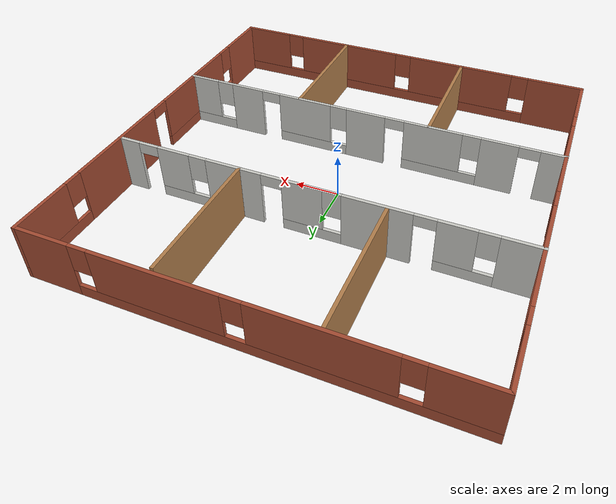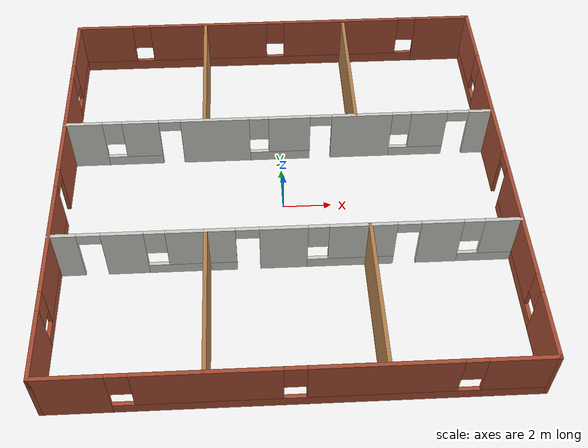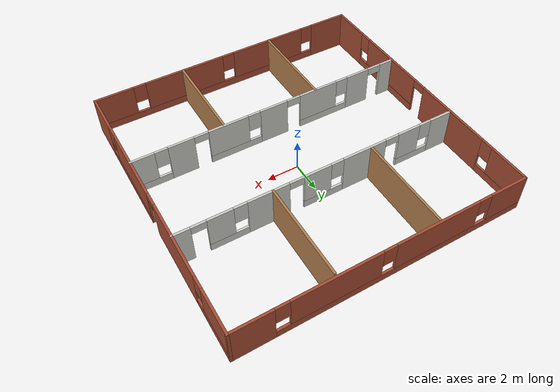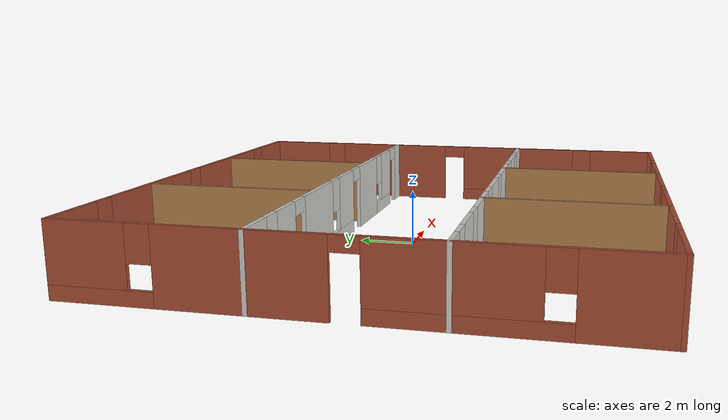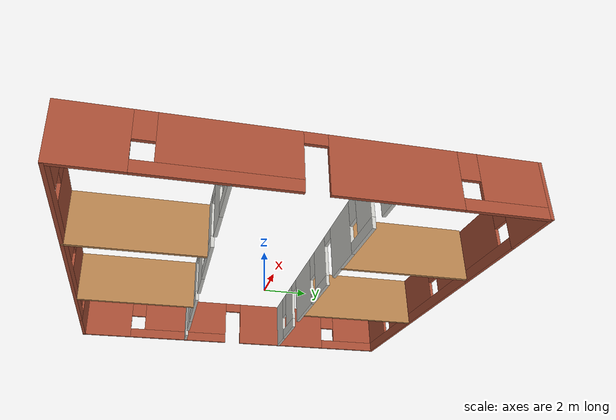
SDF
<?xml version='1.0'?>
<sdf version='1.7'>
  <model name='jail'>
    <pose>-0.00452 -0.00982 0 0 -0 0</pose>
    <link name='Wall_11'>
      <collision name='Wall_11_Collision'>
        <geometry>
          <box>
            <size>6 0.15 2.5</size>
          </box>
        </geometry>
        <pose>0 0 1.25 0 -0 0</pose>
      </collision>
      <visual name='Wall_11_Visual'>
        <pose>0 0 1.25 0 -0 0</pose>
        <geometry>
          <box>
            <size>6 0.15 2.5</size>
          </box>
        </geometry>
        <material>
          <script>
            <uri>file://media/materials/scripts/gazebo.material</uri>
            <name>Gazebo/Wood</name>
          </script>
          <ambient>1 1 1 1</ambient>
        </material>
        <meta>
          <layer>0</layer>
        </meta>
      </visual>
      <pose>-3.06356 -5.96312 0 0 -0 1.5708</pose>
    </link>
    <link name='Wall_13'>
      <pose>-0.004617 -3.00901 0 0 -0 0</pose>
      <visual name='Wall_13_Visual_0'>
        <pose>-8.44763 0 1.25 0 -0 0</pose>
        <geometry>
          <box>
            <size>1.10474 0.15 2.5</size>
          </box>
        </geometry>
        <material>
          <script>
            <uri>file://media/materials/scripts/gazebo.material</uri>
            <name>Gazebo/CeilingTiled</name>
          </script>
          <ambient>1 0.764706 0.305882 1</ambient>
        </material>
        <meta>
          <layer>0</layer>
        </meta>
      </visual>
      <collision name='Wall_13_Collision_0'>
        <geometry>
          <box>
            <size>1.10474 0.15 2.5</size>
          </box>
        </geometry>
        <pose>-8.44763 0 1.25 0 -0 0</pose>
      </collision>
      <visual name='Wall_13_Visual_1'>
        <pose>-6.18737 0 1.25 0 -0 0</pose>
        <geometry>
          <box>
            <size>1.61577 0.15 2.5</size>
          </box>
        </geometry>
        <material>
          <script>
            <uri>file://media/materials/scripts/gazebo.material</uri>
            <name>Gazebo/CeilingTiled</name>
          </script>
          <ambient>1 0.764706 0.305882 1</ambient>
        </material>
        <meta>
          <layer>0</layer>
        </meta>
      </visual>
      <collision name='Wall_13_Collision_1'>
        <geometry>
          <box>
            <size>1.61577 0.15 2.5</size>
          </box>
        </geometry>
        <pose>-6.18737 0 1.25 0 -0 0</pose>
      </collision>
      <visual name='Wall_13_Visual_2'>
        <pose>-0.116003 0 1.25 0 -0 0</pose>
        <geometry>
          <box>
            <size>1.84839 0.15 2.5</size>
          </box>
        </geometry>
        <material>
          <script>
            <uri>file://media/materials/scripts/gazebo.material</uri>
            <name>Gazebo/CeilingTiled</name>
          </script>
          <ambient>1 0.764706 0.305882 1</ambient>
        </material>
        <meta>
          <layer>0</layer>
        </meta>
      </visual>
      <collision name='Wall_13_Collision_2'>
        <geometry>
          <box>
            <size>1.84839 0.15 2.5</size>
          </box>
        </geometry>
        <pose>-0.116003 0 1.25 0 -0 0</pose>
      </collision>
      <visual name='Wall_13_Visual_3'>
        <pose>5.90884 0 1.25 0 -0 0</pose>
        <geometry>
          <box>
            <size>1.61577 0.15 2.5</size>
          </box>
        </geometry>
        <material>
          <script>
            <uri>file://media/materials/scripts/gazebo.material</uri>
            <name>Gazebo/CeilingTiled</name>
          </script>
          <ambient>1 0.764706 0.305882 1</ambient>
        </material>
        <meta>
          <layer>0</layer>
        </meta>
      </visual>
      <collision name='Wall_13_Collision_3'>
        <geometry>
          <box>
            <size>1.61577 0.15 2.5</size>
          </box>
        </geometry>
        <pose>5.90884 0 1.25 0 -0 0</pose>
      </collision>
      <visual name='Wall_13_Visual_4'>
        <pose>-3.65984 0 0.25 0 -0 0</pose>
        <geometry>
          <box>
            <size>3.43929 0.15 0.5</size>
          </box>
        </geometry>
        <material>
          <script>
            <uri>file://media/materials/scripts/gazebo.material</uri>
            <name>Gazebo/CeilingTiled</name>
          </script>
          <ambient>1 0.764706 0.305882 1</ambient>
        </material>
        <meta>
          <layer>0</layer>
        </meta>
      </visual>
      <collision name='Wall_13_Collision_4'>
        <geometry>
          <box>
            <size>3.43929 0.15 0.5</size>
          </box>
        </geometry>
        <pose>-3.65984 0 0.25 0 -0 0</pose>
      </collision>
      <visual name='Wall_13_Visual_5'>
        <pose>2.50457 0 0.25 0 -0 0</pose>
        <geometry>
          <box>
            <size>3.39277 0.15 0.5</size>
          </box>
        </geometry>
        <material>
          <script>
            <uri>file://media/materials/scripts/gazebo.material</uri>
            <name>Gazebo/CeilingTiled</name>
          </script>
          <ambient>1 0.764706 0.305882 1</ambient>
        </material>
        <meta>
          <layer>0</layer>
        </meta>
      </visual>
      <collision name='Wall_13_Collision_5'>
        <geometry>
          <box>
            <size>3.39277 0.15 0.5</size>
          </box>
        </geometry>
        <pose>2.50457 0 0.25 0 -0 0</pose>
      </collision>
      <visual name='Wall_13_Visual_6'>
        <pose>7.85836 0 0.25 0 -0 0</pose>
        <geometry>
          <box>
            <size>2.28327 0.15 0.5</size>
          </box>
        </geometry>
        <material>
          <script>
            <uri>file://media/materials/scripts/gazebo.material</uri>
            <name>Gazebo/CeilingTiled</name>
          </script>
          <ambient>1 0.764706 0.305882 1</ambient>
        </material>
        <meta>
          <layer>0</layer>
        </meta>
      </visual>
      <collision name='Wall_13_Collision_6'>
        <geometry>
          <box>
            <size>2.28327 0.15 0.5</size>
          </box>
        </geometry>
        <pose>7.85836 0 0.25 0 -0 0</pose>
      </collision>
      <visual name='Wall_13_Visual_7'>
        <pose>-3.25984 0 1.5 0 -0 0</pose>
        <geometry>
          <box>
            <size>2.63929 0.15 2</size>
          </box>
        </geometry>
        <material>
          <script>
            <uri>file://media/materials/scripts/gazebo.material</uri>
            <name>Gazebo/CeilingTiled</name>
          </script>
          <ambient>1 0.764706 0.305882 1</ambient>
        </material>
        <meta>
          <layer>0</layer>
        </meta>
      </visual>
      <collision name='Wall_13_Collision_7'>
        <geometry>
          <box>
            <size>2.63929 0.15 2</size>
          </box>
        </geometry>
        <pose>-3.25984 0 1.5 0 -0 0</pose>
      </collision>
      <visual name='Wall_13_Visual_8'>
        <pose>-3.25984 0 1.5 0 -0 0</pose>
        <geometry>
          <box>
            <size>2.63929 0.15 2</size>
          </box>
        </geometry>
        <material>
          <script>
            <uri>file://media/materials/scripts/gazebo.material</uri>
            <name>Gazebo/CeilingTiled</name>
          </script>
          <ambient>1 0.764706 0.305882 1</ambient>
        </material>
        <meta>
          <layer>0</layer>
        </meta>
      </visual>
      <collision name='Wall_13_Collision_8'>
        <geometry>
          <box>
            <size>2.63929 0.15 2</size>
          </box>
        </geometry>
        <pose>-3.25984 0 1.5 0 -0 0</pose>
      </collision>
      <visual name='Wall_13_Visual_9'>
        <pose>2.90457 0 1.5 0 -0 0</pose>
        <geometry>
          <box>
            <size>2.59277 0.15 2</size>
          </box>
        </geometry>
        <material>
          <script>
            <uri>file://media/materials/scripts/gazebo.material</uri>
            <name>Gazebo/CeilingTiled</name>
          </script>
          <ambient>1 0.764706 0.305882 1</ambient>
        </material>
        <meta>
          <layer>0</layer>
        </meta>
      </visual>
      <collision name='Wall_13_Collision_9'>
        <geometry>
          <box>
            <size>2.59277 0.15 2</size>
          </box>
        </geometry>
        <pose>2.90457 0 1.5 0 -0 0</pose>
      </collision>
      <visual name='Wall_13_Visual_10'>
        <pose>2.90457 0 1.5 0 -0 0</pose>
        <geometry>
          <box>
            <size>2.59277 0.15 2</size>
          </box>
        </geometry>
        <material>
          <script>
            <uri>file://media/materials/scripts/gazebo.material</uri>
            <name>Gazebo/CeilingTiled</name>
          </script>
          <ambient>1 0.764706 0.305882 1</ambient>
        </material>
        <meta>
          <layer>0</layer>
        </meta>
      </visual>
      <collision name='Wall_13_Collision_10'>
        <geometry>
          <box>
            <size>2.59277 0.15 2</size>
          </box>
        </geometry>
        <pose>2.90457 0 1.5 0 -0 0</pose>
      </collision>
      <visual name='Wall_13_Visual_11'>
        <pose>8.25836 0 1.5 0 -0 0</pose>
        <geometry>
          <box>
            <size>1.48327 0.15 2</size>
          </box>
        </geometry>
        <material>
          <script>
            <uri>file://media/materials/scripts/gazebo.material</uri>
            <name>Gazebo/CeilingTiled</name>
          </script>
          <ambient>1 0.764706 0.305882 1</ambient>
        </material>
        <meta>
          <layer>0</layer>
        </meta>
      </visual>
      <collision name='Wall_13_Collision_11'>
        <geometry>
          <box>
            <size>1.48327 0.15 2</size>
          </box>
        </geometry>
        <pose>8.25836 0 1.5 0 -0 0</pose>
      </collision>
      <visual name='Wall_13_Visual_12'>
        <pose>-4.97949 0 1.9 0 -0 0</pose>
        <geometry>
          <box>
            <size>0.8 0.15 1.2</size>
          </box>
        </geometry>
        <material>
          <script>
            <uri>file://media/materials/scripts/gazebo.material</uri>
            <name>Gazebo/CeilingTiled</name>
          </script>
          <ambient>1 0.764706 0.305882 1</ambient>
        </material>
        <meta>
          <layer>0</layer>
        </meta>
      </visual>
      <collision name='Wall_13_Collision_12'>
        <geometry>
          <box>
            <size>0.8 0.15 1.2</size>
          </box>
        </geometry>
        <pose>-4.97949 0 1.9 0 -0 0</pose>
      </collision>
      <visual name='Wall_13_Visual_13'>
        <pose>1.20819 0 1.9 0 -0 0</pose>
        <geometry>
          <box>
            <size>0.8 0.15 1.2</size>
          </box>
        </geometry>
        <material>
          <script>
            <uri>file://media/materials/scripts/gazebo.material</uri>
            <name>Gazebo/CeilingTiled</name>
          </script>
          <ambient>1 0.764706 0.305882 1</ambient>
        </material>
        <meta>
          <layer>0</layer>
        </meta>
      </visual>
      <collision name='Wall_13_Collision_13'>
        <geometry>
          <box>
            <size>0.8 0.15 1.2</size>
          </box>
        </geometry>
        <pose>1.20819 0 1.9 0 -0 0</pose>
      </collision>
      <visual name='Wall_13_Visual_14'>
        <pose>7.11673 0 1.9 0 -0 0</pose>
        <geometry>
          <box>
            <size>0.8 0.15 1.2</size>
          </box>
        </geometry>
        <material>
          <script>
            <uri>file://media/materials/scripts/gazebo.material</uri>
            <name>Gazebo/CeilingTiled</name>
          </script>
          <ambient>1 0.764706 0.305882 1</ambient>
        </material>
        <meta>
          <layer>0</layer>
        </meta>
      </visual>
      <collision name='Wall_13_Collision_14'>
        <geometry>
          <box>
            <size>0.8 0.15 1.2</size>
          </box>
        </geometry>
        <pose>7.11673 0 1.9 0 -0 0</pose>
      </collision>
      <visual name='Wall_13_Visual_15'>
        <pose>-7.44526 0 2.25 0 -0 0</pose>
        <geometry>
          <box>
            <size>0.9 0.15 0.5</size>
          </box>
        </geometry>
        <material>
          <script>
            <uri>file://media/materials/scripts/gazebo.material</uri>
            <name>Gazebo/CeilingTiled</name>
          </script>
          <ambient>1 0.764706 0.305882 1</ambient>
        </material>
        <meta>
          <layer>0</layer>
        </meta>
      </visual>
      <collision name='Wall_13_Collision_15'>
        <geometry>
          <box>
            <size>0.9 0.15 0.5</size>
          </box>
        </geometry>
        <pose>-7.44526 0 2.25 0 -0 0</pose>
      </collision>
      <visual name='Wall_13_Visual_16'>
        <pose>-1.4902 0 2.25 0 -0 0</pose>
        <geometry>
          <box>
            <size>0.9 0.15 0.5</size>
          </box>
        </geometry>
        <material>
          <script>
            <uri>file://media/materials/scripts/gazebo.material</uri>
            <name>Gazebo/CeilingTiled</name>
          </script>
          <ambient>1 0.764706 0.305882 1</ambient>
        </material>
        <meta>
          <layer>0</layer>
        </meta>
      </visual>
      <collision name='Wall_13_Collision_16'>
        <geometry>
          <box>
            <size>0.9 0.15 0.5</size>
          </box>
        </geometry>
        <pose>-1.4902 0 2.25 0 -0 0</pose>
      </collision>
      <visual name='Wall_13_Visual_17'>
        <pose>-1.4902 0 2.25 0 -0 0</pose>
        <geometry>
          <box>
            <size>0.9 0.15 0.5</size>
          </box>
        </geometry>
        <material>
          <script>
            <uri>file://media/materials/scripts/gazebo.material</uri>
            <name>Gazebo/CeilingTiled</name>
          </script>
          <ambient>1 0.764706 0.305882 1</ambient>
        </material>
        <meta>
          <layer>0</layer>
        </meta>
      </visual>
      <collision name='Wall_13_Collision_17'>
        <geometry>
          <box>
            <size>0.9 0.15 0.5</size>
          </box>
        </geometry>
        <pose>-1.4902 0 2.25 0 -0 0</pose>
      </collision>
      <visual name='Wall_13_Visual_18'>
        <pose>4.65096 0 2.25 0 -0 0</pose>
        <geometry>
          <box>
            <size>0.9 0.15 0.5</size>
          </box>
        </geometry>
        <material>
          <script>
            <uri>file://media/materials/scripts/gazebo.material</uri>
            <name>Gazebo/CeilingTiled</name>
          </script>
          <ambient>1 0.764706 0.305882 1</ambient>
        </material>
        <meta>
          <layer>0</layer>
        </meta>
      </visual>
      <collision name='Wall_13_Collision_18'>
        <geometry>
          <box>
            <size>0.9 0.15 0.5</size>
          </box>
        </geometry>
        <pose>4.65096 0 2.25 0 -0 0</pose>
      </collision>
      <visual name='Wall_13_Visual_19'>
        <pose>4.65096 0 2.25 0 -0 0</pose>
        <geometry>
          <box>
            <size>0.9 0.15 0.5</size>
          </box>
        </geometry>
        <material>
          <script>
            <uri>file://media/materials/scripts/gazebo.material</uri>
            <name>Gazebo/CeilingTiled</name>
          </script>
          <ambient>1 0.764706 0.305882 1</ambient>
        </material>
        <meta>
          <layer>0</layer>
        </meta>
      </visual>
      <collision name='Wall_13_Collision_19'>
        <geometry>
          <box>
            <size>0.9 0.15 0.5</size>
          </box>
        </geometry>
        <pose>4.65096 0 2.25 0 -0 0</pose>
      </collision>
    </link>
    <link name='Wall_15'>
      <collision name='Wall_15_Collision'>
        <geometry>
          <box>
            <size>6 0.15 2.5</size>
          </box>
        </geometry>
        <pose>0 0 1.25 0 -0 0</pose>
      </collision>
      <visual name='Wall_15_Visual'>
        <pose>0 0 1.25 0 -0 0</pose>
        <geometry>
          <box>
            <size>6 0.15 2.5</size>
          </box>
        </geometry>
        <material>
          <script>
            <uri>file://media/materials/scripts/gazebo.material</uri>
            <name>Gazebo/Wood</name>
          </script>
          <ambient>1 1 1 1</ambient>
        </material>
        <meta>
          <layer>0</layer>
        </meta>
      </visual>
      <pose>-3.15142 5.84831 0 0 -0 -1.5708</pose>
    </link>
    <link name='Wall_21'>
      <pose>-0.004676 2.78133 0 0 -0 0</pose>
      <visual name='Wall_21_Visual_0'>
        <pose>-8.18998 0 1.25 0 -0 0</pose>
        <geometry>
          <box>
            <size>1.62004 0.15 2.5</size>
          </box>
        </geometry>
        <material>
          <script>
            <uri>file://media/materials/scripts/gazebo.material</uri>
            <name>Gazebo/CeilingTiled</name>
          </script>
          <ambient>1 0.764706 0.305882 1</ambient>
        </material>
        <meta>
          <layer>0</layer>
        </meta>
      </visual>
      <collision name='Wall_21_Collision_0'>
        <geometry>
          <box>
            <size>1.62004 0.15 2.5</size>
          </box>
        </geometry>
        <pose>-8.18998 0 1.25 0 -0 0</pose>
      </collision>
      <visual name='Wall_21_Visual_1'>
        <pose>-2.72128 0 1.25 0 -0 0</pose>
        <geometry>
          <box>
            <size>2.87191 0.15 2.5</size>
          </box>
        </geometry>
        <material>
          <script>
            <uri>file://media/materials/scripts/gazebo.material</uri>
            <name>Gazebo/CeilingTiled</name>
          </script>
          <ambient>1 0.764706 0.305882 1</ambient>
        </material>
        <meta>
          <layer>0</layer>
        </meta>
      </visual>
      <collision name='Wall_21_Collision_1'>
        <geometry>
          <box>
            <size>2.87191 0.15 2.5</size>
          </box>
        </geometry>
        <pose>-2.72128 0 1.25 0 -0 0</pose>
      </collision>
      <visual name='Wall_21_Visual_2'>
        <pose>3.44314 0 1.25 0 -0 0</pose>
        <geometry>
          <box>
            <size>2.54625 0.15 2.5</size>
          </box>
        </geometry>
        <material>
          <script>
            <uri>file://media/materials/scripts/gazebo.material</uri>
            <name>Gazebo/CeilingTiled</name>
          </script>
          <ambient>1 0.764706 0.305882 1</ambient>
        </material>
        <meta>
          <layer>0</layer>
        </meta>
      </visual>
      <collision name='Wall_21_Collision_2'>
        <geometry>
          <box>
            <size>2.54625 0.15 2.5</size>
          </box>
        </geometry>
        <pose>3.44314 0 1.25 0 -0 0</pose>
      </collision>
      <visual name='Wall_21_Visual_3'>
        <pose>8.46949 0 1.25 0 -0 0</pose>
        <geometry>
          <box>
            <size>1.06102 0.15 2.5</size>
          </box>
        </geometry>
        <material>
          <script>
            <uri>file://media/materials/scripts/gazebo.material</uri>
            <name>Gazebo/CeilingTiled</name>
          </script>
          <ambient>1 0.764706 0.305882 1</ambient>
        </material>
        <meta>
          <layer>0</layer>
        </meta>
      </visual>
      <collision name='Wall_21_Collision_3'>
        <geometry>
          <box>
            <size>1.06102 0.15 2.5</size>
          </box>
        </geometry>
        <pose>8.46949 0 1.25 0 -0 0</pose>
      </collision>
      <visual name='Wall_21_Visual_4'>
        <pose>-6.2186 0 0.25 0 -0 0</pose>
        <geometry>
          <box>
            <size>2.32272 0.15 0.5</size>
          </box>
        </geometry>
        <material>
          <script>
            <uri>file://media/materials/scripts/gazebo.material</uri>
            <name>Gazebo/CeilingTiled</name>
          </script>
          <ambient>1 0.764706 0.305882 1</ambient>
        </material>
        <meta>
          <layer>0</layer>
        </meta>
      </visual>
      <collision name='Wall_21_Collision_4'>
        <geometry>
          <box>
            <size>2.32272 0.15 0.5</size>
          </box>
        </geometry>
        <pose>-6.2186 0 0.25 0 -0 0</pose>
      </collision>
      <visual name='Wall_21_Visual_5'>
        <pose>-0.007657 0 0.25 0 -0 0</pose>
        <geometry>
          <box>
            <size>2.55534 0.15 0.5</size>
          </box>
        </geometry>
        <material>
          <script>
            <uri>file://media/materials/scripts/gazebo.material</uri>
            <name>Gazebo/CeilingTiled</name>
          </script>
          <ambient>1 0.764706 0.305882 1</ambient>
        </material>
        <meta>
          <layer>0</layer>
        </meta>
      </visual>
      <collision name='Wall_21_Collision_5'>
        <geometry>
          <box>
            <size>2.55534 0.15 0.5</size>
          </box>
        </geometry>
        <pose>-0.007657 0 0.25 0 -0 0</pose>
      </collision>
      <visual name='Wall_21_Visual_6'>
        <pose>5.87762 0 0.25 0 -0 0</pose>
        <geometry>
          <box>
            <size>2.32272 0.15 0.5</size>
          </box>
        </geometry>
        <material>
          <script>
            <uri>file://media/materials/scripts/gazebo.material</uri>
            <name>Gazebo/CeilingTiled</name>
          </script>
          <ambient>1 0.764706 0.305882 1</ambient>
        </material>
        <meta>
          <layer>0</layer>
        </meta>
      </visual>
      <collision name='Wall_21_Collision_6'>
        <geometry>
          <box>
            <size>2.32272 0.15 0.5</size>
          </box>
        </geometry>
        <pose>5.87762 0 0.25 0 -0 0</pose>
      </collision>
      <visual name='Wall_21_Visual_7'>
        <pose>-5.8186 0 1.5 0 -0 0</pose>
        <geometry>
          <box>
            <size>1.52272 0.15 2</size>
          </box>
        </geometry>
        <material>
          <script>
            <uri>file://media/materials/scripts/gazebo.material</uri>
            <name>Gazebo/CeilingTiled</name>
          </script>
          <ambient>1 0.764706 0.305882 1</ambient>
        </material>
        <meta>
          <layer>0</layer>
        </meta>
      </visual>
      <collision name='Wall_21_Collision_7'>
        <geometry>
          <box>
            <size>1.52272 0.15 2</size>
          </box>
        </geometry>
        <pose>-5.8186 0 1.5 0 -0 0</pose>
      </collision>
      <visual name='Wall_21_Visual_8'>
        <pose>-5.8186 0 1.5 0 -0 0</pose>
        <geometry>
          <box>
            <size>1.52272 0.15 2</size>
          </box>
        </geometry>
        <material>
          <script>
            <uri>file://media/materials/scripts/gazebo.material</uri>
            <name>Gazebo/CeilingTiled</name>
          </script>
          <ambient>1 0.764706 0.305882 1</ambient>
        </material>
        <meta>
          <layer>0</layer>
        </meta>
      </visual>
      <collision name='Wall_21_Collision_8'>
        <geometry>
          <box>
            <size>1.52272 0.15 2</size>
          </box>
        </geometry>
        <pose>-5.8186 0 1.5 0 -0 0</pose>
      </collision>
      <visual name='Wall_21_Visual_9'>
        <pose>0.392343 0 1.5 0 -0 0</pose>
        <geometry>
          <box>
            <size>1.75534 0.15 2</size>
          </box>
        </geometry>
        <material>
          <script>
            <uri>file://media/materials/scripts/gazebo.material</uri>
            <name>Gazebo/CeilingTiled</name>
          </script>
          <ambient>1 0.764706 0.305882 1</ambient>
        </material>
        <meta>
          <layer>0</layer>
        </meta>
      </visual>
      <collision name='Wall_21_Collision_9'>
        <geometry>
          <box>
            <size>1.75534 0.15 2</size>
          </box>
        </geometry>
        <pose>0.392343 0 1.5 0 -0 0</pose>
      </collision>
      <visual name='Wall_21_Visual_10'>
        <pose>0.392343 0 1.5 0 -0 0</pose>
        <geometry>
          <box>
            <size>1.75534 0.15 2</size>
          </box>
        </geometry>
        <material>
          <script>
            <uri>file://media/materials/scripts/gazebo.material</uri>
            <name>Gazebo/CeilingTiled</name>
          </script>
          <ambient>1 0.764706 0.305882 1</ambient>
        </material>
        <meta>
          <layer>0</layer>
        </meta>
      </visual>
      <collision name='Wall_21_Collision_10'>
        <geometry>
          <box>
            <size>1.75534 0.15 2</size>
          </box>
        </geometry>
        <pose>0.392343 0 1.5 0 -0 0</pose>
      </collision>
      <visual name='Wall_21_Visual_11'>
        <pose>6.27762 0 1.5 0 -0 0</pose>
        <geometry>
          <box>
            <size>1.52272 0.15 2</size>
          </box>
        </geometry>
        <material>
          <script>
            <uri>file://media/materials/scripts/gazebo.material</uri>
            <name>Gazebo/CeilingTiled</name>
          </script>
          <ambient>1 0.764706 0.305882 1</ambient>
        </material>
        <meta>
          <layer>0</layer>
        </meta>
      </visual>
      <collision name='Wall_21_Collision_11'>
        <geometry>
          <box>
            <size>1.52272 0.15 2</size>
          </box>
        </geometry>
        <pose>6.27762 0 1.5 0 -0 0</pose>
      </collision>
      <visual name='Wall_21_Visual_12'>
        <pose>-6.97996 0 1.9 0 -0 0</pose>
        <geometry>
          <box>
            <size>0.8 0.15 1.2</size>
          </box>
        </geometry>
        <material>
          <script>
            <uri>file://media/materials/scripts/gazebo.material</uri>
            <name>Gazebo/CeilingTiled</name>
          </script>
          <ambient>1 0.764706 0.305882 1</ambient>
        </material>
        <meta>
          <layer>0</layer>
        </meta>
      </visual>
      <collision name='Wall_21_Collision_12'>
        <geometry>
          <box>
            <size>0.8 0.15 1.2</size>
          </box>
        </geometry>
        <pose>-6.97996 0 1.9 0 -0 0</pose>
      </collision>
      <visual name='Wall_21_Visual_13'>
        <pose>-0.885326 0 1.9 0 -0 0</pose>
        <geometry>
          <box>
            <size>0.8 0.15 1.2</size>
          </box>
        </geometry>
        <material>
          <script>
            <uri>file://media/materials/scripts/gazebo.material</uri>
            <name>Gazebo/CeilingTiled</name>
          </script>
          <ambient>1 0.764706 0.305882 1</ambient>
        </material>
        <meta>
          <layer>0</layer>
        </meta>
      </visual>
      <collision name='Wall_21_Collision_13'>
        <geometry>
          <box>
            <size>0.8 0.15 1.2</size>
          </box>
        </geometry>
        <pose>-0.885326 0 1.9 0 -0 0</pose>
      </collision>
      <visual name='Wall_21_Visual_14'>
        <pose>5.11626 0 1.9 0 -0 0</pose>
        <geometry>
          <box>
            <size>0.8 0.15 1.2</size>
          </box>
        </geometry>
        <material>
          <script>
            <uri>file://media/materials/scripts/gazebo.material</uri>
            <name>Gazebo/CeilingTiled</name>
          </script>
          <ambient>1 0.764706 0.305882 1</ambient>
        </material>
        <meta>
          <layer>0</layer>
        </meta>
      </visual>
      <collision name='Wall_21_Collision_14'>
        <geometry>
          <box>
            <size>0.8 0.15 1.2</size>
          </box>
        </geometry>
        <pose>5.11626 0 1.9 0 -0 0</pose>
      </collision>
      <visual name='Wall_21_Visual_15'>
        <pose>-4.60724 0 2.25 0 -0 0</pose>
        <geometry>
          <box>
            <size>0.9 0.15 0.5</size>
          </box>
        </geometry>
        <material>
          <script>
            <uri>file://media/materials/scripts/gazebo.material</uri>
            <name>Gazebo/CeilingTiled</name>
          </script>
          <ambient>1 0.764706 0.305882 1</ambient>
        </material>
        <meta>
          <layer>0</layer>
        </meta>
      </visual>
      <collision name='Wall_21_Collision_15'>
        <geometry>
          <box>
            <size>0.9 0.15 0.5</size>
          </box>
        </geometry>
        <pose>-4.60724 0 2.25 0 -0 0</pose>
      </collision>
      <visual name='Wall_21_Visual_16'>
        <pose>-4.60724 0 2.25 0 -0 0</pose>
        <geometry>
          <box>
            <size>0.9 0.15 0.5</size>
          </box>
        </geometry>
        <material>
          <script>
            <uri>file://media/materials/scripts/gazebo.material</uri>
            <name>Gazebo/CeilingTiled</name>
          </script>
          <ambient>1 0.764706 0.305882 1</ambient>
        </material>
        <meta>
          <layer>0</layer>
        </meta>
      </visual>
      <collision name='Wall_21_Collision_16'>
        <geometry>
          <box>
            <size>0.9 0.15 0.5</size>
          </box>
        </geometry>
        <pose>-4.60724 0 2.25 0 -0 0</pose>
      </collision>
      <visual name='Wall_21_Visual_17'>
        <pose>1.72001 0 2.25 0 -0 0</pose>
        <geometry>
          <box>
            <size>0.9 0.15 0.5</size>
          </box>
        </geometry>
        <material>
          <script>
            <uri>file://media/materials/scripts/gazebo.material</uri>
            <name>Gazebo/CeilingTiled</name>
          </script>
          <ambient>1 0.764706 0.305882 1</ambient>
        </material>
        <meta>
          <layer>0</layer>
        </meta>
      </visual>
      <collision name='Wall_21_Collision_17'>
        <geometry>
          <box>
            <size>0.9 0.15 0.5</size>
          </box>
        </geometry>
        <pose>1.72001 0 2.25 0 -0 0</pose>
      </collision>
      <visual name='Wall_21_Visual_18'>
        <pose>1.72001 0 2.25 0 -0 0</pose>
        <geometry>
          <box>
            <size>0.9 0.15 0.5</size>
          </box>
        </geometry>
        <material>
          <script>
            <uri>file://media/materials/scripts/gazebo.material</uri>
            <name>Gazebo/CeilingTiled</name>
          </script>
          <ambient>1 0.764706 0.305882 1</ambient>
        </material>
        <meta>
          <layer>0</layer>
        </meta>
      </visual>
      <collision name='Wall_21_Collision_18'>
        <geometry>
          <box>
            <size>0.9 0.15 0.5</size>
          </box>
        </geometry>
        <pose>1.72001 0 2.25 0 -0 0</pose>
      </collision>
      <visual name='Wall_21_Visual_19'>
        <pose>7.48898 0 2.25 0 -0 0</pose>
        <geometry>
          <box>
            <size>0.9 0.15 0.5</size>
          </box>
        </geometry>
        <material>
          <script>
            <uri>file://media/materials/scripts/gazebo.material</uri>
            <name>Gazebo/CeilingTiled</name>
          </script>
          <ambient>1 0.764706 0.305882 1</ambient>
        </material>
        <meta>
          <layer>0</layer>
        </meta>
      </visual>
      <collision name='Wall_21_Collision_19'>
        <geometry>
          <box>
            <size>0.9 0.15 0.5</size>
          </box>
        </geometry>
        <pose>7.48898 0 2.25 0 -0 0</pose>
      </collision>
    </link>
    <link name='Wall_25'>
      <collision name='Wall_25_Collision'>
        <geometry>
          <box>
            <size>6 0.15 2.5</size>
          </box>
        </geometry>
        <pose>0 0 1.25 0 -0 0</pose>
      </collision>
      <visual name='Wall_25_Visual'>
        <pose>0 0 1.25 0 -0 0</pose>
        <geometry>
          <box>
            <size>6 0.15 2.5</size>
          </box>
        </geometry>
        <material>
          <script>
            <uri>file://media/materials/scripts/gazebo.material</uri>
            <name>Gazebo/Wood</name>
          </script>
          <ambient>1 1 1 1</ambient>
        </material>
        <meta>
          <layer>0</layer>
        </meta>
      </visual>
      <pose>3.16189 -5.95721 0 0 -0 1.5708</pose>
    </link>
    <link name='Wall_27'>
      <collision name='Wall_27_Collision'>
        <geometry>
          <box>
            <size>6 0.15 2.5</size>
          </box>
        </geometry>
        <pose>0 0 1.25 0 -0 0</pose>
      </collision>
      <visual name='Wall_27_Visual'>
        <pose>0 0 1.25 0 -0 0</pose>
        <geometry>
          <box>
            <size>6 0.15 2.5</size>
          </box>
        </geometry>
        <material>
          <script>
            <uri>file://media/materials/scripts/gazebo.material</uri>
            <name>Gazebo/Wood</name>
          </script>
          <ambient>1 1 1 1</ambient>
        </material>
        <meta>
          <layer>0</layer>
        </meta>
      </visual>
      <pose>3.16202 5.75982 0 0 -0 1.5708</pose>
    </link>
    <link name='Wall_3'>
      <pose>0.004675 -8.925 0 0 -0 0</pose>
      <visual name='Wall_3_Visual_0'>
        <pose>-7.69511 0 1.25 0 -0 0</pose>
        <geometry>
          <box>
            <size>2.60977 0.15 2.5</size>
          </box>
        </geometry>
        <material>
          <script>
            <uri>file://media/materials/scripts/gazebo.material</uri>
            <name>Gazebo/Bricks</name>
          </script>
          <ambient>1 1 1 1</ambient>
        </material>
        <meta>
          <layer>0</layer>
        </meta>
      </visual>
      <collision name='Wall_3_Collision_0'>
        <geometry>
          <box>
            <size>2.60977 0.15 2.5</size>
          </box>
        </geometry>
        <pose>-7.69511 0 1.25 0 -0 0</pose>
      </collision>
      <visual name='Wall_3_Visual_1'>
        <pose>1.30489 0 0.25 0 -0 0</pose>
        <geometry>
          <box>
            <size>15.3902 0.15 0.5</size>
          </box>
        </geometry>
        <material>
          <script>
            <uri>file://media/materials/scripts/gazebo.material</uri>
            <name>Gazebo/Bricks</name>
          </script>
          <ambient>1 1 1 1</ambient>
        </material>
        <meta>
          <layer>0</layer>
        </meta>
      </visual>
      <collision name='Wall_3_Collision_1'>
        <geometry>
          <box>
            <size>15.3902 0.15 0.5</size>
          </box>
        </geometry>
        <pose>1.30489 0 0.25 0 -0 0</pose>
      </collision>
      <visual name='Wall_3_Visual_2'>
        <pose>-2.99651 0 1.5 0 -0 0</pose>
        <geometry>
          <box>
            <size>5.18743 0.15 2</size>
          </box>
        </geometry>
        <material>
          <script>
            <uri>file://media/materials/scripts/gazebo.material</uri>
            <name>Gazebo/Bricks</name>
          </script>
          <ambient>1 1 1 1</ambient>
        </material>
        <meta>
          <layer>0</layer>
        </meta>
      </visual>
      <collision name='Wall_3_Collision_2'>
        <geometry>
          <box>
            <size>5.18743 0.15 2</size>
          </box>
        </geometry>
        <pose>-2.99651 0 1.5 0 -0 0</pose>
      </collision>
      <visual name='Wall_3_Visual_3'>
        <pose>3.05159 0 1.5 0 -0 0</pose>
        <geometry>
          <box>
            <size>5.30879 0.15 2</size>
          </box>
        </geometry>
        <material>
          <script>
            <uri>file://media/materials/scripts/gazebo.material</uri>
            <name>Gazebo/Bricks</name>
          </script>
          <ambient>1 1 1 1</ambient>
        </material>
        <meta>
          <layer>0</layer>
        </meta>
      </visual>
      <collision name='Wall_3_Collision_3'>
        <geometry>
          <box>
            <size>5.30879 0.15 2</size>
          </box>
        </geometry>
        <pose>3.05159 0 1.5 0 -0 0</pose>
      </collision>
      <visual name='Wall_3_Visual_4'>
        <pose>7.753 0 1.5 0 -0 0</pose>
        <geometry>
          <box>
            <size>2.49401 0.15 2</size>
          </box>
        </geometry>
        <material>
          <script>
            <uri>file://media/materials/scripts/gazebo.material</uri>
            <name>Gazebo/Bricks</name>
          </script>
          <ambient>1 1 1 1</ambient>
        </material>
        <meta>
          <layer>0</layer>
        </meta>
      </visual>
      <collision name='Wall_3_Collision_4'>
        <geometry>
          <box>
            <size>2.49401 0.15 2</size>
          </box>
        </geometry>
        <pose>7.753 0 1.5 0 -0 0</pose>
      </collision>
      <visual name='Wall_3_Visual_5'>
        <pose>-5.99023 0 1.9 0 -0 0</pose>
        <geometry>
          <box>
            <size>0.8 0.15 1.2</size>
          </box>
        </geometry>
        <material>
          <script>
            <uri>file://media/materials/scripts/gazebo.material</uri>
            <name>Gazebo/Bricks</name>
          </script>
          <ambient>1 1 1 1</ambient>
        </material>
        <meta>
          <layer>0</layer>
        </meta>
      </visual>
      <collision name='Wall_3_Collision_5'>
        <geometry>
          <box>
            <size>0.8 0.15 1.2</size>
          </box>
        </geometry>
        <pose>-5.99023 0 1.9 0 -0 0</pose>
      </collision>
      <visual name='Wall_3_Visual_6'>
        <pose>-0.002802 0 1.9 0 -0 0</pose>
        <geometry>
          <box>
            <size>0.8 0.15 1.2</size>
          </box>
        </geometry>
        <material>
          <script>
            <uri>file://media/materials/scripts/gazebo.material</uri>
            <name>Gazebo/Bricks</name>
          </script>
          <ambient>1 1 1 1</ambient>
        </material>
        <meta>
          <layer>0</layer>
        </meta>
      </visual>
      <collision name='Wall_3_Collision_6'>
        <geometry>
          <box>
            <size>0.8 0.15 1.2</size>
          </box>
        </geometry>
        <pose>-0.002802 0 1.9 0 -0 0</pose>
      </collision>
      <visual name='Wall_3_Visual_7'>
        <pose>6.10599 0 1.9 0 -0 0</pose>
        <geometry>
          <box>
            <size>0.8 0.15 1.2</size>
          </box>
        </geometry>
        <material>
          <script>
            <uri>file://media/materials/scripts/gazebo.material</uri>
            <name>Gazebo/Bricks</name>
          </script>
          <ambient>1 1 1 1</ambient>
        </material>
        <meta>
          <layer>0</layer>
        </meta>
      </visual>
      <collision name='Wall_3_Collision_7'>
        <geometry>
          <box>
            <size>0.8 0.15 1.2</size>
          </box>
        </geometry>
        <pose>6.10599 0 1.9 0 -0 0</pose>
      </collision>
    </link>
    <link name='Wall_5'>
      <pose>8.92967 0 0 0 -0 1.5708</pose>
      <visual name='Wall_5_Visual_0'>
        <pose>-7.65902 0 1.25 0 -0 0</pose>
        <geometry>
          <box>
            <size>2.68196 0.15 2.5</size>
          </box>
        </geometry>
        <material>
          <script>
            <uri>file://media/materials/scripts/gazebo.material</uri>
            <name>Gazebo/Bricks</name>
          </script>
          <ambient>1 1 1 1</ambient>
        </material>
        <meta>
          <layer>0</layer>
        </meta>
      </visual>
      <collision name='Wall_5_Collision_0'>
        <geometry>
          <box>
            <size>2.68196 0.15 2.5</size>
          </box>
        </geometry>
        <pose>-7.65902 0 1.25 0 -0 0</pose>
      </collision>
      <visual name='Wall_5_Visual_1'>
        <pose>2.95088 0 1.25 0 -0 0</pose>
        <geometry>
          <box>
            <size>5.00731 0.15 2.5</size>
          </box>
        </geometry>
        <material>
          <script>
            <uri>file://media/materials/scripts/gazebo.material</uri>
            <name>Gazebo/Bricks</name>
          </script>
          <ambient>1 1 1 1</ambient>
        </material>
        <meta>
          <layer>0</layer>
        </meta>
      </visual>
      <collision name='Wall_5_Collision_1'>
        <geometry>
          <box>
            <size>5.00731 0.15 2.5</size>
          </box>
        </geometry>
        <pose>2.95088 0 1.25 0 -0 0</pose>
      </collision>
      <visual name='Wall_5_Visual_2'>
        <pose>-3.3854 0 0.25 0 -0 0</pose>
        <geometry>
          <box>
            <size>5.86526 0.15 0.5</size>
          </box>
        </geometry>
        <material>
          <script>
            <uri>file://media/materials/scripts/gazebo.material</uri>
            <name>Gazebo/Bricks</name>
          </script>
          <ambient>1 1 1 1</ambient>
        </material>
        <meta>
          <layer>0</layer>
        </meta>
      </visual>
      <collision name='Wall_5_Collision_2'>
        <geometry>
          <box>
            <size>5.86526 0.15 0.5</size>
          </box>
        </geometry>
        <pose>-3.3854 0 0.25 0 -0 0</pose>
      </collision>
      <visual name='Wall_5_Visual_3'>
        <pose>7.22727 0 0.25 0 -0 0</pose>
        <geometry>
          <box>
            <size>3.54546 0.15 0.5</size>
          </box>
        </geometry>
        <material>
          <script>
            <uri>file://media/materials/scripts/gazebo.material</uri>
            <name>Gazebo/Bricks</name>
          </script>
          <ambient>1 1 1 1</ambient>
        </material>
        <meta>
          <layer>0</layer>
        </meta>
      </visual>
      <collision name='Wall_5_Collision_3'>
        <geometry>
          <box>
            <size>3.54546 0.15 0.5</size>
          </box>
        </geometry>
        <pose>7.22727 0 0.25 0 -0 0</pose>
      </collision>
      <visual name='Wall_5_Visual_4'>
        <pose>-2.98541 0 1.5 0 -0 0</pose>
        <geometry>
          <box>
            <size>5.06527 0.15 2</size>
          </box>
        </geometry>
        <material>
          <script>
            <uri>file://media/materials/scripts/gazebo.material</uri>
            <name>Gazebo/Bricks</name>
          </script>
          <ambient>1 1 1 1</ambient>
        </material>
        <meta>
          <layer>0</layer>
        </meta>
      </visual>
      <collision name='Wall_5_Collision_4'>
        <geometry>
          <box>
            <size>5.06527 0.15 2</size>
          </box>
        </geometry>
        <pose>-2.98541 0 1.5 0 -0 0</pose>
      </collision>
      <visual name='Wall_5_Visual_5'>
        <pose>-2.98541 0 1.5 0 -0 0</pose>
        <geometry>
          <box>
            <size>5.06527 0.15 2</size>
          </box>
        </geometry>
        <material>
          <script>
            <uri>file://media/materials/scripts/gazebo.material</uri>
            <name>Gazebo/Bricks</name>
          </script>
          <ambient>1 1 1 1</ambient>
        </material>
        <meta>
          <layer>0</layer>
        </meta>
      </visual>
      <collision name='Wall_5_Collision_5'>
        <geometry>
          <box>
            <size>5.06527 0.15 2</size>
          </box>
        </geometry>
        <pose>-2.98541 0 1.5 0 -0 0</pose>
      </collision>
      <visual name='Wall_5_Visual_6'>
        <pose>7.62727 0 1.5 0 -0 0</pose>
        <geometry>
          <box>
            <size>2.74546 0.15 2</size>
          </box>
        </geometry>
        <material>
          <script>
            <uri>file://media/materials/scripts/gazebo.material</uri>
            <name>Gazebo/Bricks</name>
          </script>
          <ambient>1 1 1 1</ambient>
        </material>
        <meta>
          <layer>0</layer>
        </meta>
      </visual>
      <collision name='Wall_5_Collision_6'>
        <geometry>
          <box>
            <size>2.74546 0.15 2</size>
          </box>
        </geometry>
        <pose>7.62727 0 1.5 0 -0 0</pose>
      </collision>
      <visual name='Wall_5_Visual_7'>
        <pose>-5.91804 0 1.9 0 -0 0</pose>
        <geometry>
          <box>
            <size>0.8 0.15 1.2</size>
          </box>
        </geometry>
        <material>
          <script>
            <uri>file://media/materials/scripts/gazebo.material</uri>
            <name>Gazebo/Bricks</name>
          </script>
          <ambient>1 1 1 1</ambient>
        </material>
        <meta>
          <layer>0</layer>
        </meta>
      </visual>
      <collision name='Wall_5_Collision_7'>
        <geometry>
          <box>
            <size>0.8 0.15 1.2</size>
          </box>
        </geometry>
        <pose>-5.91804 0 1.9 0 -0 0</pose>
      </collision>
      <visual name='Wall_5_Visual_8'>
        <pose>5.85454 0 1.9 0 -0 0</pose>
        <geometry>
          <box>
            <size>0.8 0.15 1.2</size>
          </box>
        </geometry>
        <material>
          <script>
            <uri>file://media/materials/scripts/gazebo.material</uri>
            <name>Gazebo/Bricks</name>
          </script>
          <ambient>1 1 1 1</ambient>
        </material>
        <meta>
          <layer>0</layer>
        </meta>
      </visual>
      <collision name='Wall_5_Collision_8'>
        <geometry>
          <box>
            <size>0.8 0.15 1.2</size>
          </box>
        </geometry>
        <pose>5.85454 0 1.9 0 -0 0</pose>
      </collision>
      <visual name='Wall_5_Visual_9'>
        <pose>-0.002772 0 2.25 0 -0 0</pose>
        <geometry>
          <box>
            <size>0.9 0.15 0.5</size>
          </box>
        </geometry>
        <material>
          <script>
            <uri>file://media/materials/scripts/gazebo.material</uri>
            <name>Gazebo/Bricks</name>
          </script>
          <ambient>1 1 1 1</ambient>
        </material>
        <meta>
          <layer>0</layer>
        </meta>
      </visual>
      <collision name='Wall_5_Collision_9'>
        <geometry>
          <box>
            <size>0.9 0.15 0.5</size>
          </box>
        </geometry>
        <pose>-0.002772 0 2.25 0 -0 0</pose>
      </collision>
      <visual name='Wall_5_Visual_10'>
        <pose>-0.002772 0 2.25 0 -0 0</pose>
        <geometry>
          <box>
            <size>0.9 0.15 0.5</size>
          </box>
        </geometry>
        <material>
          <script>
            <uri>file://media/materials/scripts/gazebo.material</uri>
            <name>Gazebo/Bricks</name>
          </script>
          <ambient>1 1 1 1</ambient>
        </material>
        <meta>
          <layer>0</layer>
        </meta>
      </visual>
      <collision name='Wall_5_Collision_10'>
        <geometry>
          <box>
            <size>0.9 0.15 0.5</size>
          </box>
        </geometry>
        <pose>-0.002772 0 2.25 0 -0 0</pose>
      </collision>
    </link>
    <link name='Wall_7'>
      <pose>0.004675 8.925 0 0 -0 3.14159</pose>
      <visual name='Wall_7_Visual_0'>
        <pose>-7.76522 0 1.25 0 -0 0</pose>
        <geometry>
          <box>
            <size>2.46957 0.15 2.5</size>
          </box>
        </geometry>
        <material>
          <script>
            <uri>file://media/materials/scripts/gazebo.material</uri>
            <name>Gazebo/Bricks</name>
          </script>
          <ambient>1 1 1 1</ambient>
        </material>
        <meta>
          <layer>0</layer>
        </meta>
      </visual>
      <collision name='Wall_7_Collision_0'>
        <geometry>
          <box>
            <size>2.46957 0.15 2.5</size>
          </box>
        </geometry>
        <pose>-7.76522 0 1.25 0 -0 0</pose>
      </collision>
      <visual name='Wall_7_Visual_1'>
        <pose>1.23478 0 0.25 0 -0 0</pose>
        <geometry>
          <box>
            <size>15.5304 0.15 0.5</size>
          </box>
        </geometry>
        <material>
          <script>
            <uri>file://media/materials/scripts/gazebo.material</uri>
            <name>Gazebo/Bricks</name>
          </script>
          <ambient>1 1 1 1</ambient>
        </material>
        <meta>
          <layer>0</layer>
        </meta>
      </visual>
      <collision name='Wall_7_Collision_1'>
        <geometry>
          <box>
            <size>15.5304 0.15 0.5</size>
          </box>
        </geometry>
        <pose>1.23478 0 0.25 0 -0 0</pose>
      </collision>
      <visual name='Wall_7_Visual_2'>
        <pose>-3.08312 0 1.5 0 -0 0</pose>
        <geometry>
          <box>
            <size>5.29463 0.15 2</size>
          </box>
        </geometry>
        <material>
          <script>
            <uri>file://media/materials/scripts/gazebo.material</uri>
            <name>Gazebo/Bricks</name>
          </script>
          <ambient>1 1 1 1</ambient>
        </material>
        <meta>
          <layer>0</layer>
        </meta>
      </visual>
      <collision name='Wall_7_Collision_2'>
        <geometry>
          <box>
            <size>5.29463 0.15 2</size>
          </box>
        </geometry>
        <pose>-3.08312 0 1.5 0 -0 0</pose>
      </collision>
      <visual name='Wall_7_Visual_3'>
        <pose>3.03478 0 1.5 0 -0 0</pose>
        <geometry>
          <box>
            <size>5.34116 0.15 2</size>
          </box>
        </geometry>
        <material>
          <script>
            <uri>file://media/materials/scripts/gazebo.material</uri>
            <name>Gazebo/Bricks</name>
          </script>
          <ambient>1 1 1 1</ambient>
        </material>
        <meta>
          <layer>0</layer>
        </meta>
      </visual>
      <collision name='Wall_7_Collision_3'>
        <geometry>
          <box>
            <size>5.34116 0.15 2</size>
          </box>
        </geometry>
        <pose>3.03478 0 1.5 0 -0 0</pose>
      </collision>
      <visual name='Wall_7_Visual_4'>
        <pose>7.75268 0 1.5 0 -0 0</pose>
        <geometry>
          <box>
            <size>2.49464 0.15 2</size>
          </box>
        </geometry>
        <material>
          <script>
            <uri>file://media/materials/scripts/gazebo.material</uri>
            <name>Gazebo/Bricks</name>
          </script>
          <ambient>1 1 1 1</ambient>
        </material>
        <meta>
          <layer>0</layer>
        </meta>
      </visual>
      <collision name='Wall_7_Collision_4'>
        <geometry>
          <box>
            <size>2.49464 0.15 2</size>
          </box>
        </geometry>
        <pose>7.75268 0 1.5 0 -0 0</pose>
      </collision>
      <visual name='Wall_7_Visual_5'>
        <pose>-6.13043 0 1.9 0 -0 0</pose>
        <geometry>
          <box>
            <size>0.8 0.15 1.2</size>
          </box>
        </geometry>
        <material>
          <script>
            <uri>file://media/materials/scripts/gazebo.material</uri>
            <name>Gazebo/Bricks</name>
          </script>
          <ambient>1 1 1 1</ambient>
        </material>
        <meta>
          <layer>0</layer>
        </meta>
      </visual>
      <collision name='Wall_7_Collision_5'>
        <geometry>
          <box>
            <size>0.8 0.15 1.2</size>
          </box>
        </geometry>
        <pose>-6.13043 0 1.9 0 -0 0</pose>
      </collision>
      <visual name='Wall_7_Visual_6'>
        <pose>-0.035801 0 1.9 0 -0 0</pose>
        <geometry>
          <box>
            <size>0.8 0.15 1.2</size>
          </box>
        </geometry>
        <material>
          <script>
            <uri>file://media/materials/scripts/gazebo.material</uri>
            <name>Gazebo/Bricks</name>
          </script>
          <ambient>1 1 1 1</ambient>
        </material>
        <meta>
          <layer>0</layer>
        </meta>
      </visual>
      <collision name='Wall_7_Collision_6'>
        <geometry>
          <box>
            <size>0.8 0.15 1.2</size>
          </box>
        </geometry>
        <pose>-0.035801 0 1.9 0 -0 0</pose>
      </collision>
      <visual name='Wall_7_Visual_7'>
        <pose>6.10536 0 1.9 0 -0 0</pose>
        <geometry>
          <box>
            <size>0.8 0.15 1.2</size>
          </box>
        </geometry>
        <material>
          <script>
            <uri>file://media/materials/scripts/gazebo.material</uri>
            <name>Gazebo/Bricks</name>
          </script>
          <ambient>1 1 1 1</ambient>
        </material>
        <meta>
          <layer>0</layer>
        </meta>
      </visual>
      <collision name='Wall_7_Collision_7'>
        <geometry>
          <box>
            <size>0.8 0.15 1.2</size>
          </box>
        </geometry>
        <pose>6.10536 0 1.9 0 -0 0</pose>
      </collision>
    </link>
    <link name='Wall_9'>
      <pose>-8.92033 0 0 0 -0 1.5708</pose>
      <visual name='Wall_9_Visual_0'>
        <pose>-7.63879 0 1.25 0 -0 0</pose>
        <geometry>
          <box>
            <size>2.72242 0.15 2.5</size>
          </box>
        </geometry>
        <material>
          <script>
            <uri>file://media/materials/scripts/gazebo.material</uri>
            <name>Gazebo/Bricks</name>
          </script>
          <ambient>1 1 1 1</ambient>
        </material>
        <meta>
          <layer>0</layer>
        </meta>
      </visual>
      <collision name='Wall_9_Collision_0'>
        <geometry>
          <box>
            <size>2.72242 0.15 2.5</size>
          </box>
        </geometry>
        <pose>-7.63879 0 1.25 0 -0 0</pose>
      </collision>
      <visual name='Wall_9_Visual_1'>
        <pose>2.94178 0 1.25 0 -0 0</pose>
        <geometry>
          <box>
            <size>5.26825 0.15 2.5</size>
          </box>
        </geometry>
        <material>
          <script>
            <uri>file://media/materials/scripts/gazebo.material</uri>
            <name>Gazebo/Bricks</name>
          </script>
          <ambient>1 1 1 1</ambient>
        </material>
        <meta>
          <layer>0</layer>
        </meta>
      </visual>
      <collision name='Wall_9_Collision_1'>
        <geometry>
          <box>
            <size>5.26825 0.15 2.5</size>
          </box>
        </geometry>
        <pose>2.94178 0 1.25 0 -0 0</pose>
      </collision>
      <visual name='Wall_9_Visual_2'>
        <pose>-3.43496 0 0.25 0 -0 0</pose>
        <geometry>
          <box>
            <size>5.68524 0.15 0.5</size>
          </box>
        </geometry>
        <material>
          <script>
            <uri>file://media/materials/scripts/gazebo.material</uri>
            <name>Gazebo/Bricks</name>
          </script>
          <ambient>1 1 1 1</ambient>
        </material>
        <meta>
          <layer>0</layer>
        </meta>
      </visual>
      <collision name='Wall_9_Collision_2'>
        <geometry>
          <box>
            <size>5.68524 0.15 0.5</size>
          </box>
        </geometry>
        <pose>-3.43496 0 0.25 0 -0 0</pose>
      </collision>
      <visual name='Wall_9_Visual_3'>
        <pose>7.28795 0 0.25 0 -0 0</pose>
        <geometry>
          <box>
            <size>3.4241 0.15 0.5</size>
          </box>
        </geometry>
        <material>
          <script>
            <uri>file://media/materials/scripts/gazebo.material</uri>
            <name>Gazebo/Bricks</name>
          </script>
          <ambient>1 1 1 1</ambient>
        </material>
        <meta>
          <layer>0</layer>
        </meta>
      </visual>
      <collision name='Wall_9_Collision_3'>
        <geometry>
          <box>
            <size>3.4241 0.15 0.5</size>
          </box>
        </geometry>
        <pose>7.28795 0 0.25 0 -0 0</pose>
      </collision>
      <visual name='Wall_9_Visual_4'>
        <pose>-3.03496 0 1.5 0 -0 0</pose>
        <geometry>
          <box>
            <size>4.88524 0.15 2</size>
          </box>
        </geometry>
        <material>
          <script>
            <uri>file://media/materials/scripts/gazebo.material</uri>
            <name>Gazebo/Bricks</name>
          </script>
          <ambient>1 1 1 1</ambient>
        </material>
        <meta>
          <layer>0</layer>
        </meta>
      </visual>
      <collision name='Wall_9_Collision_4'>
        <geometry>
          <box>
            <size>4.88524 0.15 2</size>
          </box>
        </geometry>
        <pose>-3.03496 0 1.5 0 -0 0</pose>
      </collision>
      <visual name='Wall_9_Visual_5'>
        <pose>-3.03496 0 1.5 0 -0 0</pose>
        <geometry>
          <box>
            <size>4.88524 0.15 2</size>
          </box>
        </geometry>
        <material>
          <script>
            <uri>file://media/materials/scripts/gazebo.material</uri>
            <name>Gazebo/Bricks</name>
          </script>
          <ambient>1 1 1 1</ambient>
        </material>
        <meta>
          <layer>0</layer>
        </meta>
      </visual>
      <collision name='Wall_9_Collision_5'>
        <geometry>
          <box>
            <size>4.88524 0.15 2</size>
          </box>
        </geometry>
        <pose>-3.03496 0 1.5 0 -0 0</pose>
      </collision>
      <visual name='Wall_9_Visual_6'>
        <pose>7.68795 0 1.5 0 -0 0</pose>
        <geometry>
          <box>
            <size>2.6241 0.15 2</size>
          </box>
        </geometry>
        <material>
          <script>
            <uri>file://media/materials/scripts/gazebo.material</uri>
            <name>Gazebo/Bricks</name>
          </script>
          <ambient>1 1 1 1</ambient>
        </material>
        <meta>
          <layer>0</layer>
        </meta>
      </visual>
      <collision name='Wall_9_Collision_6'>
        <geometry>
          <box>
            <size>2.6241 0.15 2</size>
          </box>
        </geometry>
        <pose>7.68795 0 1.5 0 -0 0</pose>
      </collision>
      <visual name='Wall_9_Visual_7'>
        <pose>-5.87758 0 1.9 0 -0 0</pose>
        <geometry>
          <box>
            <size>0.8 0.15 1.2</size>
          </box>
        </geometry>
        <material>
          <script>
            <uri>file://media/materials/scripts/gazebo.material</uri>
            <name>Gazebo/Bricks</name>
          </script>
          <ambient>1 1 1 1</ambient>
        </material>
        <meta>
          <layer>0</layer>
        </meta>
      </visual>
      <collision name='Wall_9_Collision_7'>
        <geometry>
          <box>
            <size>0.8 0.15 1.2</size>
          </box>
        </geometry>
        <pose>-5.87758 0 1.9 0 -0 0</pose>
      </collision>
      <visual name='Wall_9_Visual_8'>
        <pose>5.9759 0 1.9 0 -0 0</pose>
        <geometry>
          <box>
            <size>0.8 0.15 1.2</size>
          </box>
        </geometry>
        <material>
          <script>
            <uri>file://media/materials/scripts/gazebo.material</uri>
            <name>Gazebo/Bricks</name>
          </script>
          <ambient>1 1 1 1</ambient>
        </material>
        <meta>
          <layer>0</layer>
        </meta>
      </visual>
      <collision name='Wall_9_Collision_8'>
        <geometry>
          <box>
            <size>0.8 0.15 1.2</size>
          </box>
        </geometry>
        <pose>5.9759 0 1.9 0 -0 0</pose>
      </collision>
      <visual name='Wall_9_Visual_9'>
        <pose>-0.142344 0 2.25 0 -0 0</pose>
        <geometry>
          <box>
            <size>0.9 0.15 0.5</size>
          </box>
        </geometry>
        <material>
          <script>
            <uri>file://media/materials/scripts/gazebo.material</uri>
            <name>Gazebo/Bricks</name>
          </script>
          <ambient>1 1 1 1</ambient>
        </material>
        <meta>
          <layer>0</layer>
        </meta>
      </visual>
      <collision name='Wall_9_Collision_9'>
        <geometry>
          <box>
            <size>0.9 0.15 0.5</size>
          </box>
        </geometry>
        <pose>-0.142344 0 2.25 0 -0 0</pose>
      </collision>
      <visual name='Wall_9_Visual_10'>
        <pose>-0.142344 0 2.25 0 -0 0</pose>
        <geometry>
          <box>
            <size>0.9 0.15 0.5</size>
          </box>
        </geometry>
        <material>
          <script>
            <uri>file://media/materials/scripts/gazebo.material</uri>
            <name>Gazebo/Bricks</name>
          </script>
          <ambient>1 1 1 1</ambient>
        </material>
        <meta>
          <layer>0</layer>
        </meta>
      </visual>
      <collision name='Wall_9_Collision_10'>
        <geometry>
          <box>
            <size>0.9 0.15 0.5</size>
          </box>
        </geometry>
        <pose>-0.142344 0 2.25 0 -0 0</pose>
      </collision>
    </link>
    <static>1</static>
  </model>
</sdf>
